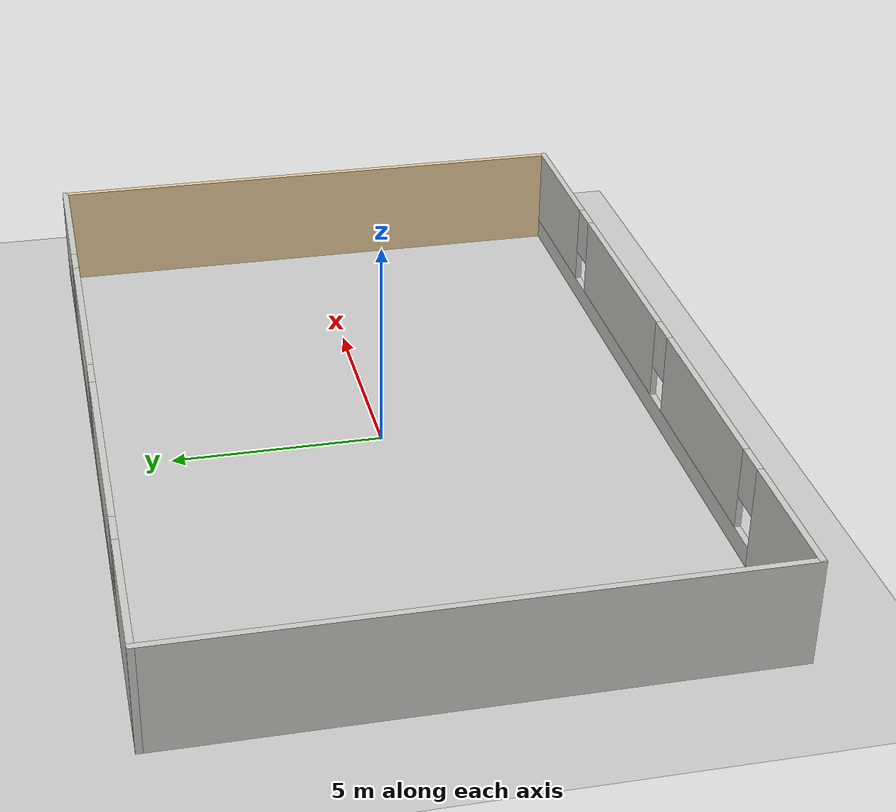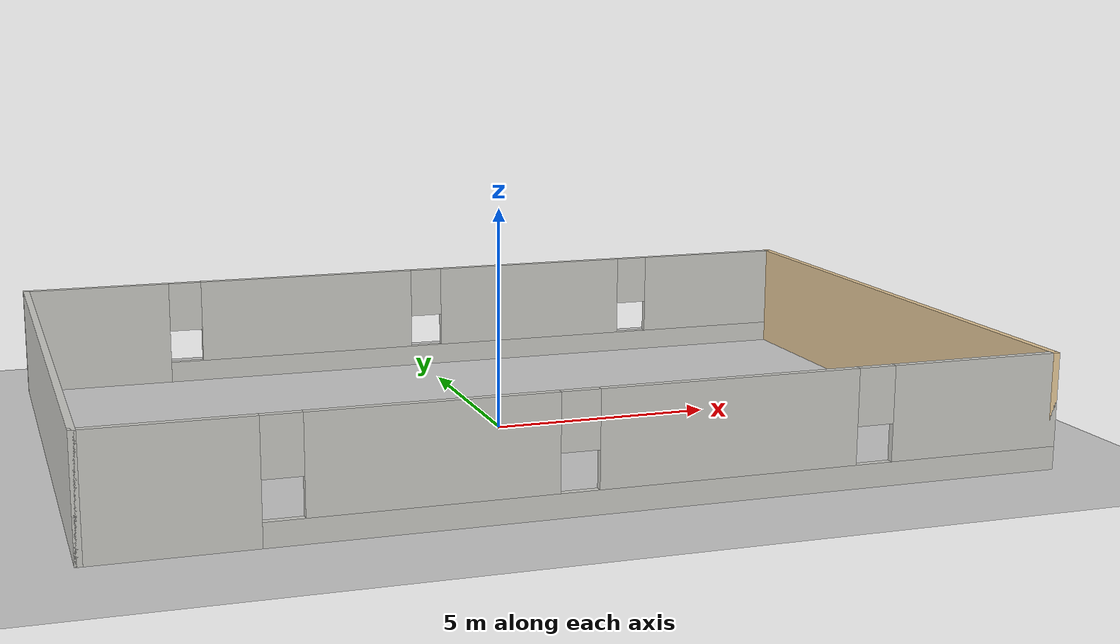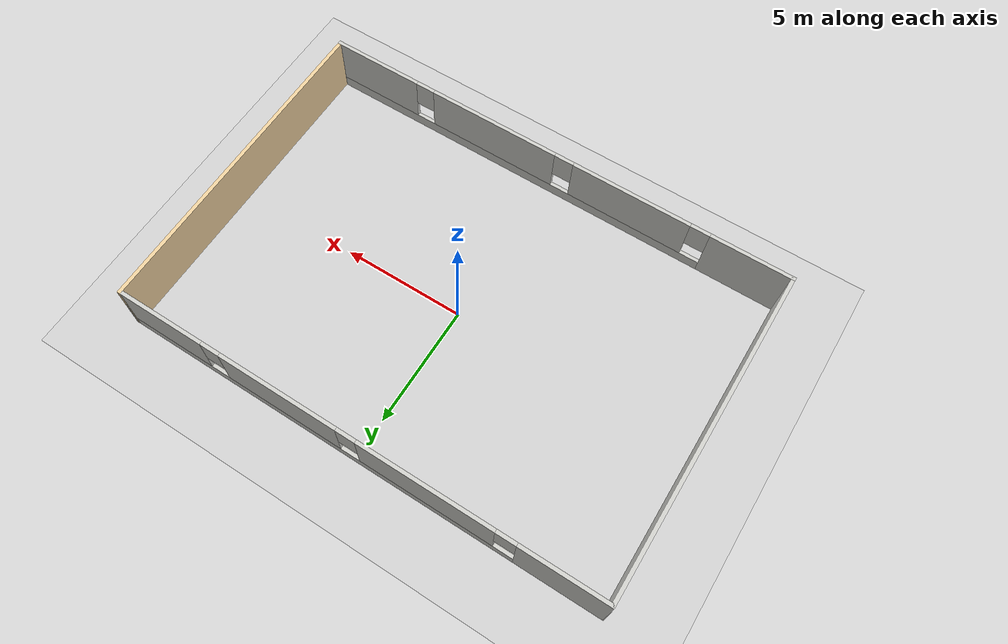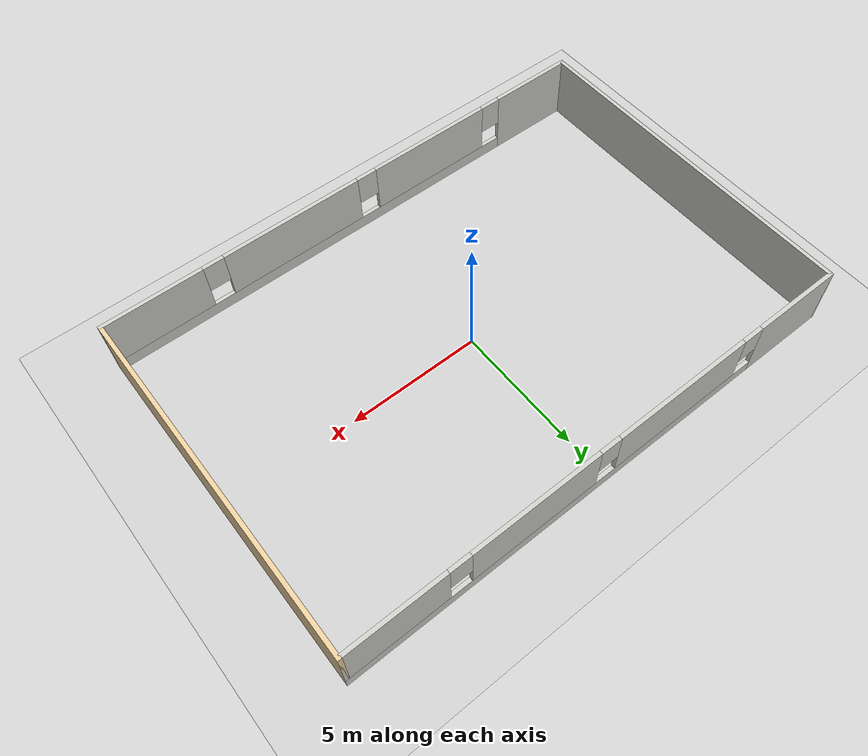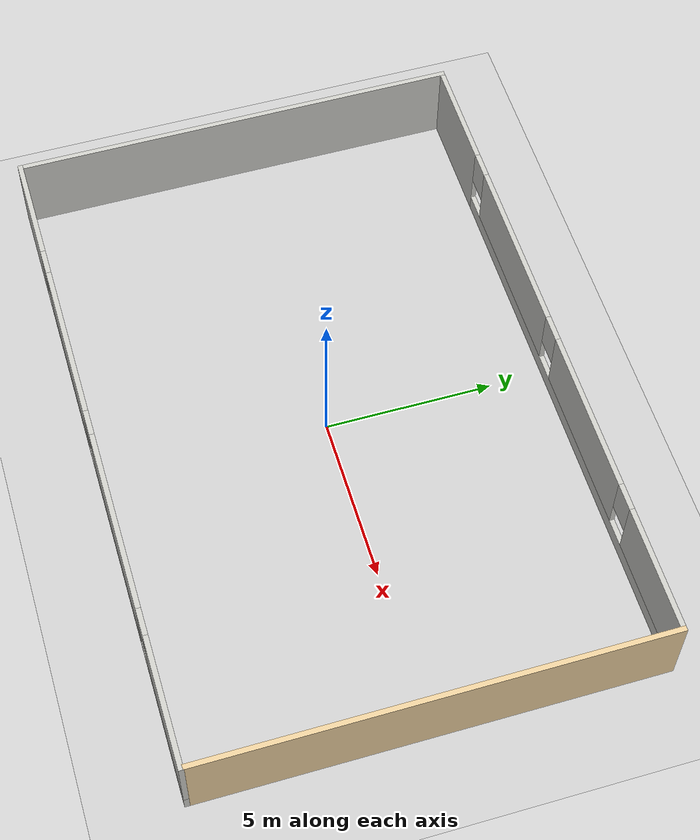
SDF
<sdf version="1.6">
 <world name="default">
  <light name="sun" type="directional">
   <pose>0 0 10 0 -0 0</pose>
   <diffuse>0.8 0.8 0.8 1</diffuse>
   <specular>0.2 0.2 0.2 1</specular>
   <attenuation>
    <range>1000</range>
    <constant>0.9</constant>
    <linear>0.01</linear>
    <quadratic>0.001</quadratic>
   </attenuation>
   <direction>-0.5 0.1 -0.9</direction>
  </light>
  <model name="ground_plane">
   <static>1</static>
   <link name="link">
    <collision name="collision">
     <geometry><plane><normal>0 0 1</normal><size>100 100</size></plane></geometry>
     <surface>
      <contact><collide_bitmask>65535</collide_bitmask></contact>
      <friction><ode><mu>100</mu><mu2>50</mu2></ode></friction>
     </surface>
    </collision>
    <visual name="visual">
     <cast_shadows>0</cast_shadows>
     <geometry><plane><normal>0 0 1</normal><size>100 100</size></plane></geometry>
     <material>
      <script><uri>file://media/materials/scripts/gazebo.material</uri><name>Gazebo/Grey</name></script>
     </material>
    </visual>
   </link>
  </model>
  <gravity>0 0 -9.8</gravity>
  <magnetic_field>6e-06 2.3e-05 -4.2e-05</magnetic_field>
  <atmosphere type="adiabatic"/>
  <physics name="default_physics" default="0" type="ode">
   <max_step_size>0.001</max_step_size>
   <real_time_factor>1</real_time_factor>
   <real_time_update_rate>1000</real_time_update_rate>
  </physics>
  <scene><ambient>0.4 0.4 0.4 1</ambient><background>0.7 0.7 0.7 1</background><shadows>1</shadows></scene>
  <spherical_coordinates>
   <surface_model>EARTH_WGS84</surface_model>
   <latitude_deg>0</latitude_deg>
   <longitude_deg>0</longitude_deg>
   <elevation>0</elevation>
   <heading_deg>0</heading_deg>
  </spherical_coordinates>
  <model name="factory_v2">
   <link name="Wall_12">
    <collision name="Wall_12_Collision">
     <geometry><box><size>13.5 0.15 2.5</size></box></geometry>
     <pose>0 0 1.25 0 -0 0</pose>
    </collision>
    <visual name="Wall_12_Visual">
     <pose>0 0 1.25 0 -0 0</pose>
     <geometry><box><size>13.5 0.15 2.5</size></box></geometry>
     <material>
      <script><uri>file://media/materials/scripts/gazebo.material</uri><name>Gazebo/CeilingTiled</name></script>
      <ambient>0.921569 0.807843 0.615686 1</ambient>
     </material>
     <meta><layer>0</layer></meta>
    </visual>
    <pose>-9.925 0 0 0 -0 -1.5708</pose>
   </link>
   <link name="Wall_13">
    <pose>0 -6.675 0 0 -0 0</pose>
    <visual name="Wall_13_Visual_0">
     <pose>-8.32282 0 1.25 0 -0 0</pose>
     <geometry><box><size>3.35437 0.15 2.5</size></box></geometry>
     <material>
      <script><uri>file://media/materials/scripts/gazebo.material</uri><name>Gazebo/CeilingTiled</name></script>
      <ambient>0.921569 0.807843 0.615686 1</ambient>
     </material>
     <meta><layer>0</layer></meta>
    </visual>
    <collision name="Wall_13_Collision_0">
     <geometry><box><size>3.35437 0.15 2.5</size></box></geometry>
     <pose>-8.32282 0 1.25 0 -0 0</pose>
    </collision>
    <visual name="Wall_13_Visual_1">
     <pose>1.67718 0 0.25 0 -0 0</pose>
     <geometry><box><size>16.6456 0.15 0.5</size></box></geometry>
     <material>
      <script><uri>file://media/materials/scripts/gazebo.material</uri><name>Gazebo/CeilingTiled</name></script>
      <ambient>0.921569 0.807843 0.615686 1</ambient>
     </material>
     <meta><layer>0</layer></meta>
    </visual>
    <collision name="Wall_13_Collision_1">
     <geometry><box><size>16.6456 0.15 0.5</size></box></geometry>
     <pose>1.67718 0 0.25 0 -0 0</pose>
    </collision>
    <visual name="Wall_13_Visual_2">
     <pose>-3.37997 0 1.5 0 -0 0</pose>
     <geometry><box><size>4.93132 0.15 2</size></box></geometry>
     <material>
      <script><uri>file://media/materials/scripts/gazebo.material</uri><name>Gazebo/CeilingTiled</name></script>
      <ambient>0.921569 0.807843 0.615686 1</ambient>
     </material>
     <meta><layer>0</layer></meta>
    </visual>
    <collision name="Wall_13_Collision_2">
     <geometry><box><size>4.93132 0.15 2</size></box></geometry>
     <pose>-3.37997 0 1.5 0 -0 0</pose>
    </collision>
    <visual name="Wall_13_Visual_3">
     <pose>2.63438 0 1.5 0 -0 0</pose>
     <geometry><box><size>5.49738 0.15 2</size></box></geometry>
     <material>
      <script><uri>file://media/materials/scripts/gazebo.material</uri><name>Gazebo/CeilingTiled</name></script>
      <ambient>0.921569 0.807843 0.615686 1</ambient>
     </material>
     <meta><layer>0</layer></meta>
    </visual>
    <collision name="Wall_13_Collision_3">
     <geometry><box><size>5.49738 0.15 2</size></box></geometry>
     <pose>2.63438 0 1.5 0 -0 0</pose>
    </collision>
    <visual name="Wall_13_Visual_4">
     <pose>8.09153 0 1.5 0 -0 0</pose>
     <geometry><box><size>3.81693 0.15 2</size></box></geometry>
     <material>
      <script><uri>file://media/materials/scripts/gazebo.material</uri><name>Gazebo/CeilingTiled</name></script>
      <ambient>0.921569 0.807843 0.615686 1</ambient>
     </material>
     <meta><layer>0</layer></meta>
    </visual>
    <collision name="Wall_13_Collision_4">
     <geometry><box><size>3.81693 0.15 2</size></box></geometry>
     <pose>8.09153 0 1.5 0 -0 0</pose>
    </collision>
    <visual name="Wall_13_Visual_5">
     <pose>-6.24563 0 1.9 0 -0 0</pose>
     <geometry><box><size>0.8 0.15 1.2</size></box></geometry>
     <material>
      <script><uri>file://media/materials/scripts/gazebo.material</uri><name>Gazebo/CeilingTiled</name></script>
      <ambient>0.921569 0.807843 0.615686 1</ambient>
     </material>
     <meta><layer>0</layer></meta>
    </visual>
    <collision name="Wall_13_Collision_5">
     <geometry><box><size>0.8 0.15 1.2</size></box></geometry>
     <pose>-6.24563 0 1.9 0 -0 0</pose>
    </collision>
    <visual name="Wall_13_Visual_6">
     <pose>-0.514311 0 1.9 0 -0 0</pose>
     <geometry><box><size>0.8 0.15 1.2</size></box></geometry>
     <material>
      <script><uri>file://media/materials/scripts/gazebo.material</uri><name>Gazebo/CeilingTiled</name></script>
      <ambient>0.921569 0.807843 0.615686 1</ambient>
     </material>
     <meta><layer>0</layer></meta>
    </visual>
    <collision name="Wall_13_Collision_6">
     <geometry><box><size>0.8 0.15 1.2</size></box></geometry>
     <pose>-0.514311 0 1.9 0 -0 0</pose>
    </collision>
    <visual name="Wall_13_Visual_7">
     <pose>5.78307 0 1.9 0 -0 0</pose>
     <geometry><box><size>0.8 0.15 1.2</size></box></geometry>
     <material>
      <script><uri>file://media/materials/scripts/gazebo.material</uri><name>Gazebo/CeilingTiled</name></script>
      <ambient>0.921569 0.807843 0.615686 1</ambient>
     </material>
     <meta><layer>0</layer></meta>
    </visual>
    <collision name="Wall_13_Collision_7">
     <geometry><box><size>0.8 0.15 1.2</size></box></geometry>
     <pose>5.78307 0 1.9 0 -0 0</pose>
    </collision>
   </link>
   <link name="Wall_4">
    <pose>0 6.675 0 0 -0 0</pose>
    <visual name="Wall_4_Visual_0">
     <pose>-8.25206 0 1.25 0 -0 0</pose>
     <geometry><box><size>3.49588 0.15 2.5</size></box></geometry>
     <material>
      <script><uri>file://media/materials/scripts/gazebo.material</uri><name>Gazebo/CeilingTiled</name></script>
      <ambient>0.921569 0.807843 0.615686 1</ambient>
     </material>
     <meta><layer>0</layer></meta>
    </visual>
    <collision name="Wall_4_Collision_0">
     <geometry><box><size>3.49588 0.15 2.5</size></box></geometry>
     <pose>-8.25206 0 1.25 0 -0 0</pose>
    </collision>
    <visual name="Wall_4_Visual_1">
     <pose>1.74794 0 0.25 0 -0 0</pose>
     <geometry><box><size>16.5041 0.15 0.5</size></box></geometry>
     <material>
      <script><uri>file://media/materials/scripts/gazebo.material</uri><name>Gazebo/CeilingTiled</name></script>
      <ambient>0.921569 0.807843 0.615686 1</ambient>
     </material>
     <meta><layer>0</layer></meta>
    </visual>
    <collision name="Wall_4_Collision_1">
     <geometry><box><size>16.5041 0.15 0.5</size></box></geometry>
     <pose>1.74794 0 0.25 0 -0 0</pose>
    </collision>
    <visual name="Wall_4_Visual_2">
     <pose>-2.99081 0 1.5 0 -0 0</pose>
     <geometry><box><size>5.42662 0.15 2</size></box></geometry>
     <material>
      <script><uri>file://media/materials/scripts/gazebo.material</uri><name>Gazebo/CeilingTiled</name></script>
      <ambient>0.921569 0.807843 0.615686 1</ambient>
     </material>
     <meta><layer>0</layer></meta>
    </visual>
    <collision name="Wall_4_Collision_2">
     <geometry><box><size>5.42662 0.15 2</size></box></geometry>
     <pose>-2.99081 0 1.5 0 -0 0</pose>
    </collision>
    <visual name="Wall_4_Visual_3">
     <pose>2.98816 0 1.5 0 -0 0</pose>
     <geometry><box><size>4.93132 0.15 2</size></box></geometry>
     <material>
      <script><uri>file://media/materials/scripts/gazebo.material</uri><name>Gazebo/CeilingTiled</name></script>
      <ambient>0.921569 0.807843 0.615686 1</ambient>
     </material>
     <meta><layer>0</layer></meta>
    </visual>
    <collision name="Wall_4_Collision_3">
     <geometry><box><size>4.93132 0.15 2</size></box></geometry>
     <pose>2.98816 0 1.5 0 -0 0</pose>
    </collision>
    <visual name="Wall_4_Visual_4">
     <pose>8.12691 0 1.5 0 -0 0</pose>
     <geometry><box><size>3.74618 0.15 2</size></box></geometry>
     <material>
      <script><uri>file://media/materials/scripts/gazebo.material</uri><name>Gazebo/CeilingTiled</name></script>
      <ambient>0.921569 0.807843 0.615686 1</ambient>
     </material>
     <meta><layer>0</layer></meta>
    </visual>
    <collision name="Wall_4_Collision_4">
     <geometry><box><size>3.74618 0.15 2</size></box></geometry>
     <pose>8.12691 0 1.5 0 -0 0</pose>
    </collision>
    <visual name="Wall_4_Visual_5">
     <pose>-6.10412 0 1.9 0 -0 0</pose>
     <geometry><box><size>0.8 0.15 1.2</size></box></geometry>
     <material>
      <script><uri>file://media/materials/scripts/gazebo.material</uri><name>Gazebo/CeilingTiled</name></script>
      <ambient>0.921569 0.807843 0.615686 1</ambient>
     </material>
     <meta><layer>0</layer></meta>
    </visual>
    <collision name="Wall_4_Collision_5">
     <geometry><box><size>0.8 0.15 1.2</size></box></geometry>
     <pose>-6.10412 0 1.9 0 -0 0</pose>
    </collision>
    <visual name="Wall_4_Visual_6">
     <pose>0.122502 0 1.9 0 -0 0</pose>
     <geometry><box><size>0.8 0.15 1.2</size></box></geometry>
     <material>
      <script><uri>file://media/materials/scripts/gazebo.material</uri><name>Gazebo/CeilingTiled</name></script>
      <ambient>0.921569 0.807843 0.615686 1</ambient>
     </material>
     <meta><layer>0</layer></meta>
    </visual>
    <collision name="Wall_4_Collision_6">
     <geometry><box><size>0.8 0.15 1.2</size></box></geometry>
     <pose>0.122502 0 1.9 0 -0 0</pose>
    </collision>
    <visual name="Wall_4_Visual_7">
     <pose>5.85382 0 1.9 0 -0 0</pose>
     <geometry><box><size>0.8 0.15 1.2</size></box></geometry>
     <material>
      <script><uri>file://media/materials/scripts/gazebo.material</uri><name>Gazebo/CeilingTiled</name></script>
      <ambient>0.921569 0.807843 0.615686 1</ambient>
     </material>
     <meta><layer>0</layer></meta>
    </visual>
    <collision name="Wall_4_Collision_7">
     <geometry><box><size>0.8 0.15 1.2</size></box></geometry>
     <pose>5.85382 0 1.9 0 -0 0</pose>
    </collision>
   </link>
   <link name="Wall_5">
    <collision name="Wall_5_Collision">
     <geometry><box><size>13.5 0.15 2.5</size></box></geometry>
     <pose>0 0 1.25 0 -0 0</pose>
    </collision>
    <visual name="Wall_5_Visual">
     <pose>0 0 1.25 0 -0 0</pose>
     <geometry><box><size>13.5 0.15 2.5</size></box></geometry>
     <material>
      <script><uri>file://media/materials/scripts/gazebo.material</uri><name>Gazebo/Grey</name></script>
      <ambient>0.921569 0.807843 0.615686 1</ambient>
     </material>
     <meta><layer>0</layer></meta>
    </visual>
    <pose>9.925 0 0 0 -0 -1.5708</pose>
   </link>
   <static>1</static>
  </model>
  <light name="user_point_light_0" type="point">
   <pose>3.0634 -0.313382 1 0 -0 0</pose>
   <diffuse>0.5 0.5 0.5 1</diffuse>
   <specular>0.1 0.1 0.1 1</specular>
   <attenuation>
    <range>20</range>
    <constant>0.5</constant>
    <linear>0.01</linear>
    <quadratic>0.001</quadratic>
   </attenuation>
   <cast_shadows>0</cast_shadows>
   <direction>0 0 -1</direction>
  </light>
 </world>
</sdf>
